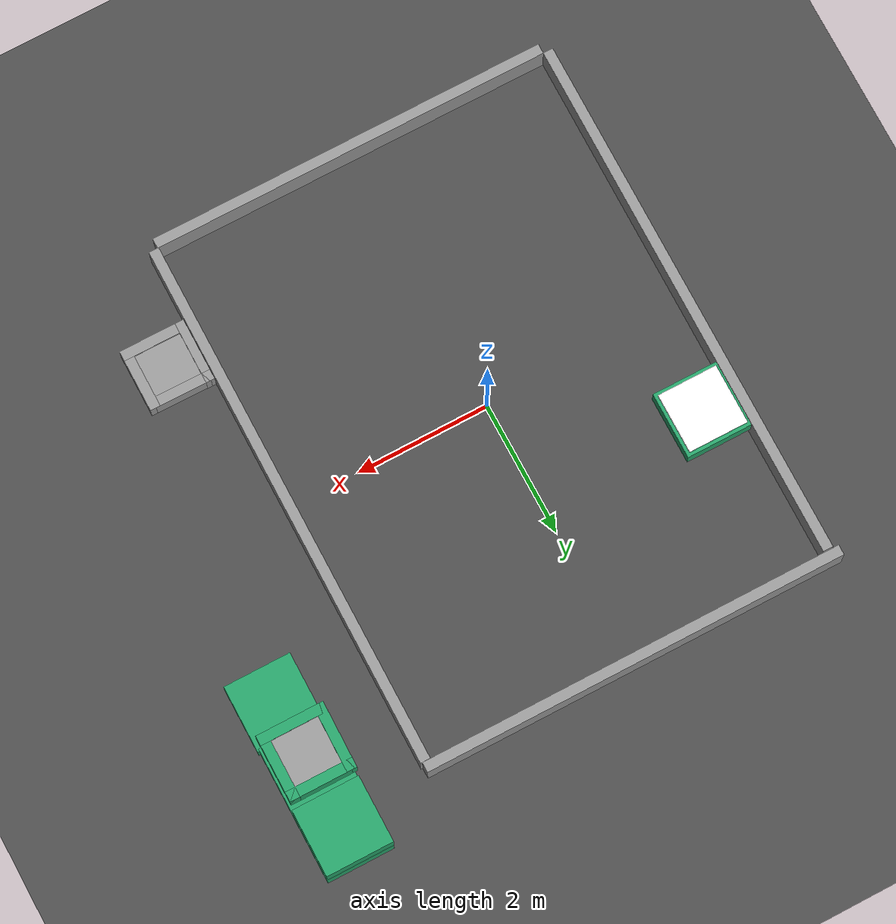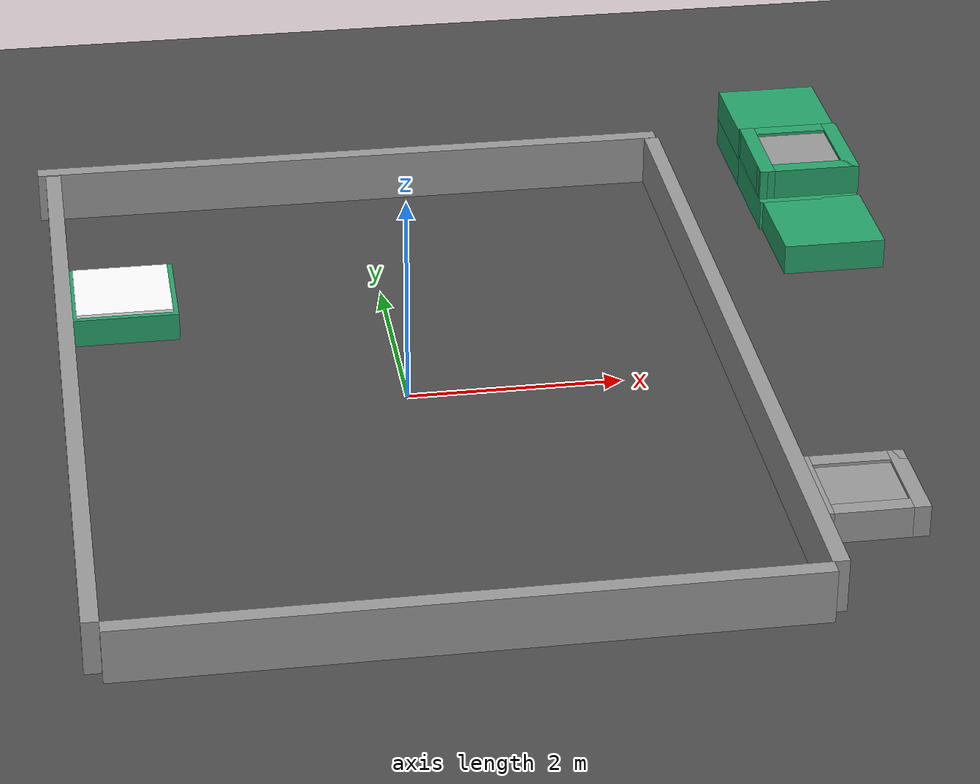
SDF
<sdf version="1.7">
 <world name="default">
  <model name="ground_plane">
   <static>1</static>
   <link name="link">
    <collision name="collision">
     <geometry><plane><normal>0 0 1</normal><size>100 100</size></plane></geometry>
    </collision>
    <visual name="visual">
     <cast_shadows>0</cast_shadows>
     <geometry><plane><normal>0 0 1</normal><size>100 100</size></plane></geometry>
     <material>
      <script><uri>file://media/materials/scripts/gazebo.material</uri><name>Gazebo/DarkGray</name></script>
     </material>
    </visual>
   </link>
  </model>
  <light name="sun" type="directional">
   <pose>0 0 3.5 0 -0 0</pose>
   <diffuse>0.25 0.25 0.25 1</diffuse>
   <direction>0 0 -1</direction>
   <attenuation><range>10</range></attenuation>
   <spot><inner_angle>0</inner_angle><outer_angle>0</outer_angle><falloff>0</falloff></spot>
  </light>
  <light name="user_point_light_0" type="point">
   <pose>0 0 3 0 -0 0</pose>
   <attenuation><linear>0.1</linear><range>10</range></attenuation>
   <cast_shadows>0</cast_shadows>
   <direction>0 0 -1</direction>
   <spot><inner_angle>0</inner_angle><outer_angle>0</outer_angle><falloff>0</falloff></spot>
  </light>
  <gravity>0 0 -9.8</gravity>
  <magnetic_field>6e-06 2.3e-05 -4.2e-05</magnetic_field>
  <atmosphere type="adiabatic"/>
  <physics type="ode">
   <max_step_size>0.001</max_step_size>
   <real_time_factor>1</real_time_factor>
   <real_time_update_rate>1000</real_time_update_rate>
  </physics>
  <scene><ambient>1 1 1 1</ambient><background>0.7 0.7 0.7 1</background><shadows>1</shadows></scene>
  <audio><device>default</device></audio>
  <spherical_coordinates>
   <surface_model>EARTH_WGS84</surface_model>
   <latitude_deg>0</latitude_deg>
   <longitude_deg>0</longitude_deg>
   <elevation>0</elevation>
   <heading_deg>0</heading_deg>
  </spherical_coordinates>
  <model name="greenBox">
   <pose>4.47659 2.3282 0 0 -0 0</pose>
   <link name="Wall_0">
    <collision name="Wall_0_Collision">
     <geometry><box><size>1 1 0.3</size></box></geometry>
     <pose>0 0 0.15 0 -0 0</pose>
    </collision>
    <visual name="Wall_0_Visual">
     <pose>0 0 0.15 0 -0 0</pose>
     <geometry><box><size>1 1 0.3</size></box></geometry>
     <material>
      <script><uri>file://media/materials/scripts/gazebo.material</uri><name>Gazebo/Grey</name></script>
      <ambient>0.14902 0.635294 0.411765 1</ambient>
     </material>
     <meta><layer>0</layer></meta>
    </visual>
   </link>
   <static>1</static>
  </model>
  <model name="greenBoxIsae">
   <pose>4.41117 3.1887 0.396123 0 -0 0</pose>
   <link name="Wall_0">
    <collision name="Wall_0_Collision">
     <geometry><box><size>0.75 0.75 0.27</size></box></geometry>
     <pose>0 0 0.135 0 -0 0</pose>
    </collision>
    <visual name="Wall_0_Visual">
     <pose>0 0 0.135 0 -0 0</pose>
     <geometry><box><size>0.75 0.75 0.27</size></box></geometry>
     <material>
      <script><uri>file://media/materials/scripts/gazebo.material</uri><name>Gazebo/Grey</name></script>
      <ambient>1 1 1 1</ambient>
     </material>
     <meta><layer>0</layer></meta>
    </visual>
    <pose>0.005242 -0.002 0 0 -0 0</pose>
   </link>
   <link name="Wall_2">
    <collision name="Wall_2_Collision">
     <geometry><box><size>1 0.15 0.3</size></box></geometry>
     <pose>0 0 0.15 0 -0 0</pose>
    </collision>
    <visual name="Wall_2_Visual">
     <pose>0 0 0.15 0 -0 0</pose>
     <geometry><box><size>1 0.15 0.3</size></box></geometry>
     <material>
      <script><uri>file://media/materials/scripts/gazebo.material</uri><name>Gazebo/Grey</name></script>
      <ambient>0.14902 0.635294 0.411765 1</ambient>
     </material>
     <meta><layer>0</layer></meta>
    </visual>
    <pose>0.004242 0.425 0 0 -0 0</pose>
   </link>
   <link name="Wall_3">
    <collision name="Wall_3_Collision">
     <geometry><box><size>1 0.15 0.3</size></box></geometry>
     <pose>0 0 0.15 0 -0 0</pose>
    </collision>
    <visual name="Wall_3_Visual">
     <pose>0 0 0.15 0 -0 0</pose>
     <geometry><box><size>1 0.15 0.3</size></box></geometry>
     <material>
      <script><uri>file://media/materials/scripts/gazebo.material</uri><name>Gazebo/Grey</name></script>
      <ambient>0.14902 0.635294 0.411765 1</ambient>
     </material>
     <meta><layer>0</layer></meta>
    </visual>
    <pose>0.429242 0 0 0 -0 -1.5708</pose>
   </link>
   <link name="Wall_4">
    <collision name="Wall_4_Collision">
     <geometry><box><size>1.00844 0.15 0.3</size></box></geometry>
     <pose>0 0 0.15 0 -0 0</pose>
    </collision>
    <visual name="Wall_4_Visual">
     <pose>0 0 0.15 0 -0 0</pose>
     <geometry><box><size>1.00844 0.15 0.3</size></box></geometry>
     <material>
      <script><uri>file://media/materials/scripts/gazebo.material</uri><name>Gazebo/Grey</name></script>
      <ambient>0.14902 0.635294 0.411765 1</ambient>
     </material>
     <meta><layer>0</layer></meta>
    </visual>
    <pose>0.000242 -0.425 0 0 -0 3.14159</pose>
   </link>
   <link name="Wall_5">
    <collision name="Wall_5_Collision">
     <geometry><box><size>1 0.15 0.3</size></box></geometry>
     <pose>0 0 0.15 0 -0 0</pose>
    </collision>
    <visual name="Wall_5_Visual">
     <pose>0 0 0.15 0 -0 0</pose>
     <geometry><box><size>1 0.15 0.3</size></box></geometry>
     <material>
      <script><uri>file://media/materials/scripts/gazebo.material</uri><name>Gazebo/Grey</name></script>
      <ambient>0.14902 0.635294 0.411765 1</ambient>
     </material>
     <meta><layer>0</layer></meta>
    </visual>
    <pose>-0.424758 0 0 0 -0 1.56139</pose>
   </link>
   <static>1</static>
  </model>
  <model name="helibox">
   <pose>-2.5112 1.51176 0.203461 0 -0 0</pose>
   <link name="Wall_0">
    <collision name="Wall_0_Collision">
     <geometry><box><size>0.9 0.9 0.3</size></box></geometry>
     <pose>0 0 0.15 0 -0 0</pose>
    </collision>
    <visual name="Wall_0_Visual">
     <pose>0 0 0.15 0 -0 0</pose>
     <geometry><box><size>0.9 0.9 0.3</size></box></geometry>
     <material>
      <script>
       <uri>model://helibox/materials/scripts</uri>
       <uri>model://helibox/materials/textures</uri>
       <name>RepeatedTexture</name>
      </script>
      <ambient>1 1 1 1</ambient>
     </material>
     <meta><layer>0</layer></meta>
    </visual>
   </link>
   <link name="Wall_2">
    <collision name="Wall_2_Collision">
     <geometry><box><size>1 1 0.27</size></box></geometry>
     <pose>0 0 0.135 0 -0 0</pose>
    </collision>
    <visual name="Wall_2_Visual">
     <pose>0 0 0.135 0 -0 0</pose>
     <geometry><box><size>1 1 0.27</size></box></geometry>
     <material>
      <script><uri>file://media/materials/scripts/gazebo.material</uri><name>Gazebo/Grey</name></script>
      <ambient>0.14902 0.635294 0.411765 1</ambient>
     </material>
     <meta><layer>0</layer></meta>
    </visual>
   </link>
   <static>1</static>
  </model>
  <model name="greyBoxIsae">
   <pose>3.61381 -2.50208 0 0 -0 0</pose>
   <link name="Wall_0">
    <collision name="Wall_0_Collision">
     <geometry><box><size>0.75 0.75 0.27</size></box></geometry>
     <pose>0 0 0.135 0 -0 0</pose>
    </collision>
    <visual name="Wall_0_Visual">
     <pose>0 0 0.135 0 -0 0</pose>
     <geometry><box><size>0.75 0.75 0.27</size></box></geometry>
     <material>
      <script><uri>file://media/materials/scripts/gazebo.material</uri><name>Gazebo/Grey</name></script>
      <ambient>1 1 1 1</ambient>
     </material>
     <meta><layer>0</layer></meta>
    </visual>
    <pose>0.012 -0.047314 0 0 -0 0</pose>
   </link>
   <link name="Wall_10">
    <collision name="Wall_10_Collision">
     <geometry><box><size>0.948 0.15 0.3</size></box></geometry>
     <pose>0 0 0.15 0 -0 0</pose>
    </collision>
    <visual name="Wall_10_Visual">
     <pose>0 0 0.15 0 -0 0</pose>
     <geometry><box><size>0.948 0.15 0.3</size></box></geometry>
     <material>
      <script><uri>file://media/materials/scripts/gazebo.material</uri><name>Gazebo/Grey</name></script>
      <ambient>0.298039 0.298039 0.298039 1</ambient>
     </material>
     <meta><layer>0</layer></meta>
    </visual>
    <pose>-0.425 -0.000314 0 0 -0 1.5708</pose>
   </link>
   <link name="Wall_7">
    <collision name="Wall_7_Collision">
     <geometry><box><size>1 0.15 0.3</size></box></geometry>
     <pose>0 0 0.15 0 -0 0</pose>
    </collision>
    <visual name="Wall_7_Visual">
     <pose>0 0 0.15 0 -0 0</pose>
     <geometry><box><size>1 0.15 0.3</size></box></geometry>
     <material>
      <script><uri>file://media/materials/scripts/gazebo.material</uri><name>Gazebo/Grey</name></script>
      <ambient>0.298039 0.298039 0.298039 1</ambient>
     </material>
     <meta><layer>0</layer></meta>
    </visual>
    <pose>0 0.394186 0 0 -0 -0.010588</pose>
   </link>
   <link name="Wall_8">
    <collision name="Wall_8_Collision">
     <geometry><box><size>0.939322 0.15 0.3</size></box></geometry>
     <pose>0 0 0.15 0 -0 0</pose>
    </collision>
    <visual name="Wall_8_Visual">
     <pose>0 0 0.15 0 -0 0</pose>
     <geometry><box><size>0.939322 0.15 0.3</size></box></geometry>
     <material>
      <script><uri>file://media/materials/scripts/gazebo.material</uri><name>Gazebo/Grey</name></script>
      <ambient>0.298039 0.298039 0.298039 1</ambient>
     </material>
     <meta><layer>0</layer></meta>
    </visual>
    <pose>0.425 -0.004814 0 0 -0 -1.5708</pose>
   </link>
   <link name="Wall_9">
    <collision name="Wall_9_Collision">
     <geometry><box><size>1 0.15 0.3</size></box></geometry>
     <pose>0 0 0.15 0 -0 0</pose>
    </collision>
    <visual name="Wall_9_Visual">
     <pose>0 0 0.15 0 -0 0</pose>
     <geometry><box><size>1 0.15 0.3</size></box></geometry>
     <material>
      <script><uri>file://media/materials/scripts/gazebo.material</uri><name>Gazebo/Grey</name></script>
      <ambient>0.298039 0.298039 0.298039 1</ambient>
     </material>
     <meta><layer>0</layer></meta>
    </visual>
    <pose>0 -0.399314 0 0 -0 3.14159</pose>
   </link>
   <static>1</static>
  </model>
  <model name="external_area">
   <link name="left_wall">
    <pose>-0.042464 4.02442 0 0 0 -0.002396</pose>
    <inertial>
     <inertia><ixx>0</ixx><ixy>0</ixy><ixz>0</ixz><iyy>0</iyy><iyz>0</iyz><izz>0</izz></inertia>
     <mass>0</mass>
    </inertial>
    <visual name="Wall_6_Visual">
     <pose>0 0 0.25 0 -0 0</pose>
     <geometry><box><size>6.33294 0.15 0.5</size></box></geometry>
     <material>
      <script><uri>file://media/materials/scripts/gazebo.material</uri><name>Gazebo/Grey</name></script>
      <ambient>0.298039 0.298039 0.298039 1</ambient>
      <shader type="pixel"/>
     </material>
     <meta><layer>0</layer></meta>
    </visual>
    <collision name="Wall_6_Collision">
     <pose>0 0 0.25 0 -0 0</pose>
     <geometry><box><size>6.33294 0.15 0.5</size></box></geometry>
     <surface>
      <friction>
       <ode><mu>1</mu><mu2>1</mu2><fdir1>0 0 0</fdir1><slip1>0</slip1><slip2>0</slip2></ode>
       <torsional>
        <coefficient>1</coefficient>
        <patch_radius>0</patch_radius>
        <surface_radius>0</surface_radius>
        <use_patch_radius>1</use_patch_radius>
        <ode><slip>0</slip></ode>
       </torsional>
      </friction>
      <bounce><restitution_coefficient>0</restitution_coefficient><threshold>1e+06</threshold></bounce>
      <contact>
       <collide_without_contact>0</collide_without_contact>
       <collide_without_contact_bitmask>1</collide_without_contact_bitmask>
       <collide_bitmask>1</collide_bitmask>
       <ode>
        <soft_cfm>0</soft_cfm>
        <soft_erp>0.2</soft_erp>
        <kp>1e+13</kp>
        <kd>1</kd>
        <max_vel>0.01</max_vel>
        <min_depth>0</min_depth>
       </ode>
       <bullet>
        <split_impulse>1</split_impulse>
        <split_impulse_penetration_threshold>-0.01</split_impulse_penetration_threshold>
        <soft_cfm>0</soft_cfm>
        <soft_erp>0.2</soft_erp>
        <kp>1e+13</kp>
        <kd>1</kd>
       </bullet>
      </contact>
     </surface>
    </collision>
   </link>
   <link name="far_wall">
    <pose>3.06922 -0.060637 0 0 0 -1.57218</pose>
    <visual name="Wall_7_Visual">
     <pose>0 0 0.25 0 -0 0</pose>
     <geometry><box><size>8 0.15 0.5</size></box></geometry>
     <material>
      <script><uri>file://media/materials/scripts/gazebo.material</uri><name>Gazebo/Grey</name></script>
      <ambient>0.298039 0.298039 0.298039 1</ambient>
      <shader type="pixel"/>
     </material>
     <meta><layer>0</layer></meta>
    </visual>
    <collision name="Wall_7_Collision">
     <pose>0 0 0.25 0 -0 0</pose>
     <geometry><box><size>8 0.15 0.5</size></box></geometry>
     <surface>
      <friction>
       <ode><mu>1</mu><mu2>1</mu2><fdir1>0 0 0</fdir1><slip1>0</slip1><slip2>0</slip2></ode>
       <torsional>
        <coefficient>1</coefficient>
        <patch_radius>0</patch_radius>
        <surface_radius>0</surface_radius>
        <use_patch_radius>1</use_patch_radius>
        <ode><slip>0</slip></ode>
       </torsional>
      </friction>
      <bounce><restitution_coefficient>0</restitution_coefficient><threshold>1e+06</threshold></bounce>
      <contact>
       <collide_without_contact>0</collide_without_contact>
       <collide_without_contact_bitmask>1</collide_without_contact_bitmask>
       <collide_bitmask>1</collide_bitmask>
       <ode>
        <soft_cfm>0</soft_cfm>
        <soft_erp>0.2</soft_erp>
        <kp>1e+13</kp>
        <kd>1</kd>
        <max_vel>0.01</max_vel>
        <min_depth>0</min_depth>
       </ode>
       <bullet>
        <split_impulse>1</split_impulse>
        <split_impulse_penetration_threshold>-0.01</split_impulse_penetration_threshold>
        <soft_cfm>0</soft_cfm>
        <soft_erp>0.2</soft_erp>
        <kp>1e+13</kp>
        <kd>1</kd>
       </bullet>
      </contact>
     </surface>
    </collision>
   </link>
   <link name="near_wall">
    <pose>-3.06301 -0.060281 0 0 -0 1.5694</pose>
    <visual name="Wall_9_Visual">
     <pose>0 0 0.25 0 -0 0</pose>
     <geometry><box><size>8 0.15 0.5</size></box></geometry>
     <material>
      <script><uri>file://media/materials/scripts/gazebo.material</uri><name>Gazebo/Grey</name></script>
      <ambient>0.298039 0.298039 0.298039 1</ambient>
      <shader type="pixel"/>
     </material>
     <meta><layer>0</layer></meta>
    </visual>
    <collision name="Wall_9_Collision">
     <pose>0 0 0.25 0 -0 0</pose>
     <geometry><box><size>8 0.15 0.5</size></box></geometry>
     <surface>
      <friction>
       <ode><mu>1</mu><mu2>1</mu2><fdir1>0 0 0</fdir1><slip1>0</slip1><slip2>0</slip2></ode>
       <torsional>
        <coefficient>1</coefficient>
        <patch_radius>0</patch_radius>
        <surface_radius>0</surface_radius>
        <use_patch_radius>1</use_patch_radius>
        <ode><slip>0</slip></ode>
       </torsional>
      </friction>
      <bounce><restitution_coefficient>0</restitution_coefficient><threshold>1e+06</threshold></bounce>
      <contact>
       <collide_without_contact>0</collide_without_contact>
       <collide_without_contact_bitmask>1</collide_without_contact_bitmask>
       <collide_bitmask>1</collide_bitmask>
       <ode>
        <soft_cfm>0</soft_cfm>
        <soft_erp>0.2</soft_erp>
        <kp>1e+13</kp>
        <kd>1</kd>
        <max_vel>0.01</max_vel>
        <min_depth>0</min_depth>
       </ode>
       <bullet>
        <split_impulse>1</split_impulse>
        <split_impulse_penetration_threshold>-0.01</split_impulse_penetration_threshold>
        <soft_cfm>0</soft_cfm>
        <soft_erp>0.2</soft_erp>
        <kp>1e+13</kp>
        <kd>1</kd>
       </bullet>
      </contact>
     </surface>
    </collision>
   </link>
   <link name="right_wall">
    <pose>0.004659 -4.13195 0 0 -0 3.14159</pose>
    <visual name="Wall_8_Visual">
     <pose>0 0 0.25 0 -0 0</pose>
     <geometry><box><size>6 0.15 0.5</size></box></geometry>
     <material>
      <script><uri>file://media/materials/scripts/gazebo.material</uri><name>Gazebo/Grey</name></script>
      <ambient>0.298039 0.298039 0.298039 1</ambient>
      <shader type="pixel"/>
     </material>
     <meta><layer>0</layer></meta>
    </visual>
    <collision name="Wall_8_Collision">
     <pose>0 0 0.25 0 -0 0</pose>
     <geometry><box><size>6 0.15 0.5</size></box></geometry>
     <surface>
      <friction>
       <ode><mu>1</mu><mu2>1</mu2><fdir1>0 0 0</fdir1><slip1>0</slip1><slip2>0</slip2></ode>
       <torsional>
        <coefficient>1</coefficient>
        <patch_radius>0</patch_radius>
        <surface_radius>0</surface_radius>
        <use_patch_radius>1</use_patch_radius>
        <ode><slip>0</slip></ode>
       </torsional>
      </friction>
      <bounce><restitution_coefficient>0</restitution_coefficient><threshold>1e+06</threshold></bounce>
      <contact>
       <collide_without_contact>0</collide_without_contact>
       <collide_without_contact_bitmask>1</collide_without_contact_bitmask>
       <collide_bitmask>1</collide_bitmask>
       <ode>
        <soft_cfm>0</soft_cfm>
        <soft_erp>0.2</soft_erp>
        <kp>1e+13</kp>
        <kd>1</kd>
        <max_vel>0.01</max_vel>
        <min_depth>0</min_depth>
       </ode>
       <bullet>
        <split_impulse>1</split_impulse>
        <split_impulse_penetration_threshold>-0.01</split_impulse_penetration_threshold>
        <soft_cfm>0</soft_cfm>
        <soft_erp>0.2</soft_erp>
        <kp>1e+13</kp>
        <kd>1</kd>
       </bullet>
      </contact>
     </surface>
    </collision>
   </link>
   <static>1</static>
   <pose>-0.00805 0.07131 0 0 -0 0</pose>
  </model>
  <model name="greenBox_clone">
   <pose>4.4502 4.28651 0 0 -0 0</pose>
   <link name="Wall_0">
    <collision name="Wall_0_Collision">
     <geometry><box><size>1 1 0.3</size></box></geometry>
     <pose>0 0 0.15 0 -0 0</pose>
    </collision>
    <visual name="Wall_0_Visual">
     <pose>0 0 0.15 0 -0 0</pose>
     <geometry><box><size>1 1 0.3</size></box></geometry>
     <material>
      <script><uri>file://media/materials/scripts/gazebo.material</uri><name>Gazebo/Grey</name></script>
      <ambient>0.14902 0.635294 0.411765 1</ambient>
     </material>
     <meta><layer>0</layer></meta>
    </visual>
   </link>
   <static>1</static>
  </model>
  <model name="greenBox_clone_0">
   <pose>4.44994 3.29369 0 0 -0 0</pose>
   <link name="Wall_0">
    <collision name="Wall_0_Collision">
     <geometry><box><size>1 1 0.3</size></box></geometry>
     <pose>0 0 0.15 0 -0 0</pose>
    </collision>
    <visual name="Wall_0_Visual">
     <pose>0 0 0.15 0 -0 0</pose>
     <geometry><box><size>1 1 0.3</size></box></geometry>
     <material>
      <script><uri>file://media/materials/scripts/gazebo.material</uri><name>Gazebo/Grey</name></script>
      <ambient>0.14902 0.635294 0.411765 1</ambient>
     </material>
     <meta><layer>0</layer></meta>
    </visual>
   </link>
   <static>1</static>
  </model>
  <model name="greenBox_clone_1">
   <pose>4.44478 4.28112 0.299784 0 -0 0</pose>
   <link name="Wall_0">
    <collision name="Wall_0_Collision">
     <geometry><box><size>1 1 0.3</size></box></geometry>
     <pose>0 0 0.15 0 -0 0</pose>
    </collision>
    <visual name="Wall_0_Visual">
     <pose>0 0 0.15 0 -0 0</pose>
     <geometry><box><size>1 1 0.3</size></box></geometry>
     <material>
      <script><uri>file://media/materials/scripts/gazebo.material</uri><name>Gazebo/Grey</name></script>
      <ambient>0.14902 0.635294 0.411765 1</ambient>
     </material>
     <meta><layer>0</layer></meta>
    </visual>
   </link>
   <static>1</static>
  </model>
 </world>
</sdf>
